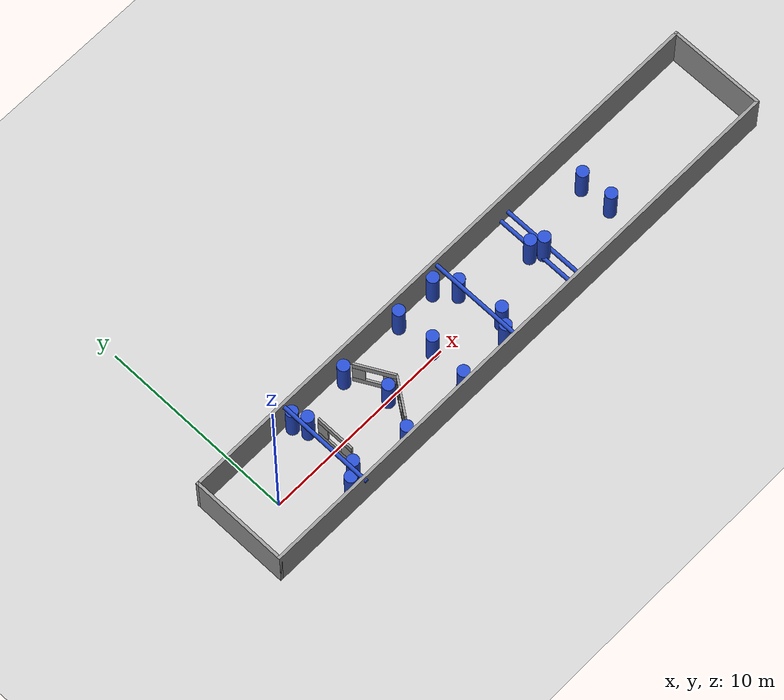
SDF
<sdf version="1.7">
 <world name="default">
  <model name="ground_plane">
   <static>1</static>
   <link name="link">
    <collision name="collision">
     <geometry><plane><normal>0 0 1</normal><size>100 100</size></plane></geometry>
     <surface><friction><ode><mu>100</mu><mu2>50</mu2></ode></friction></surface>
    </collision>
    <visual name="visual">
     <cast_shadows>0</cast_shadows>
     <geometry><plane><normal>0 0 1</normal><size>100 100</size></plane></geometry>
     <material>
      <script><uri>file://media/materials/scripts/gazebo.material</uri><name>Gazebo/Grey</name></script>
     </material>
    </visual>
   </link>
  </model>
  <light name="sun" type="directional">
   <pose>0 0 1000 0 -0 0</pose>
   <diffuse>0.8 0.8 0.8 1</diffuse>
   <specular>0.2 0.2 0.2 1</specular>
   <attenuation>
    <range>1000</range>
    <constant>0.9</constant>
    <linear>0.01</linear>
    <quadratic>0.001</quadratic>
   </attenuation>
   <direction>-0.5 0.1 -0.9</direction>
   <spot><inner_angle>0</inner_angle><outer_angle>0</outer_angle><falloff>0</falloff></spot>
  </light>
  <gravity>0 0 -9.8</gravity>
  <magnetic_field>6e-06 2.3e-05 -4.2e-05</magnetic_field>
  <atmosphere type="adiabatic"/>
  <plugin name="ros_interface_plugin" filename="librotors_gazebo_ros_interface_plugin.so"/>
  <physics name="default_physics" default="0" type="ode">
   <ode>
    <solver>
     <type>quick</type>
     <iters>1000</iters>
     <sor>1.3</sor>
     <use_dynamic_moi_rescaling>0</use_dynamic_moi_rescaling>
    </solver>
    <constraints>
     <cfm>0</cfm>
     <erp>0.2</erp>
     <contact_max_correcting_vel>100</contact_max_correcting_vel>
     <contact_surface_layer>0.001</contact_surface_layer>
    </constraints>
   </ode>
   <max_step_size>0.01</max_step_size>
   <real_time_factor>1</real_time_factor>
   <real_time_update_rate>100</real_time_update_rate>
  </physics>
  <scene><ambient>0.4 0.4 0.4 1</ambient><background>0.7 0.7 0.7 1</background><shadows>1</shadows></scene>
  <spherical_coordinates>
   <surface_model>EARTH_WGS84</surface_model>
   <latitude_deg>0</latitude_deg>
   <longitude_deg>0</longitude_deg>
   <elevation>0</elevation>
   <heading_deg>0</heading_deg>
  </spherical_coordinates>
  <model name="30x5_hall">
   <pose>12.5766 0 0 0 -0 0</pose>
   <link name="Wall_12">
    <collision name="Wall_12_Collision">
     <geometry><box><size>30 0.15 2.5</size></box></geometry>
     <pose>0 0 1.25 0 -0 0</pose>
    </collision>
    <visual name="Wall_12_Visual">
     <pose>0 0 1.25 0 -0 0</pose>
     <geometry><box><size>30 0.15 2.5</size></box></geometry>
     <material>
      <script><uri>file://media/materials/scripts/gazebo.material</uri><name>Gazebo/Grey</name></script>
      <ambient>1 1 1 1</ambient>
     </material>
     <meta><layer>0</layer></meta>
    </visual>
    <pose>0 -2.425 0 0 -0 0</pose>
   </link>
   <link name="Wall_13">
    <collision name="Wall_13_Collision">
     <geometry><box><size>5 0.15 2.5</size></box></geometry>
     <pose>0 0 1.25 0 -0 0</pose>
    </collision>
    <visual name="Wall_13_Visual">
     <pose>0 0 1.25 0 -0 0</pose>
     <geometry><box><size>5 0.15 2.5</size></box></geometry>
     <material>
      <script><uri>file://media/materials/scripts/gazebo.material</uri><name>Gazebo/Grey</name></script>
      <ambient>1 1 1 1</ambient>
     </material>
     <meta><layer>0</layer></meta>
    </visual>
    <pose>14.925 0 0 0 -0 1.5708</pose>
   </link>
   <link name="Wall_14">
    <collision name="Wall_14_Collision">
     <geometry><box><size>30 0.15 2.5</size></box></geometry>
     <pose>0 0 1.25 0 -0 0</pose>
    </collision>
    <visual name="Wall_14_Visual">
     <pose>0 0 1.25 0 -0 0</pose>
     <geometry><box><size>30 0.15 2.5</size></box></geometry>
     <material>
      <script><uri>file://media/materials/scripts/gazebo.material</uri><name>Gazebo/Grey</name></script>
      <ambient>1 1 1 1</ambient>
     </material>
     <meta><layer>0</layer></meta>
    </visual>
    <pose>0 2.425 0 0 -0 3.14159</pose>
   </link>
   <link name="Wall_15">
    <collision name="Wall_15_Collision">
     <geometry><box><size>5 0.15 2.5</size></box></geometry>
     <pose>0 0 1.25 0 -0 0</pose>
    </collision>
    <visual name="Wall_15_Visual">
     <pose>0 0 1.25 0 -0 0</pose>
     <geometry><box><size>5 0.15 2.5</size></box></geometry>
     <material>
      <script><uri>file://media/materials/scripts/gazebo.material</uri><name>Gazebo/Grey</name></script>
      <ambient>1 1 1 1</ambient>
     </material>
     <meta><layer>0</layer></meta>
    </visual>
    <pose>-14.925 0 0 0 0 -1.5708</pose>
   </link>
   <static>1</static>
  </model>
  <model name="cylinder_obstacle19">
   <static>1</static>
   <link name="link">
    <pose>0 0 1 0 -0 0</pose>
    <inertial>
     <mass>100</mass>
     <inertia>
      <ixx>0.166667</ixx>
      <ixy>0</ixy>
      <ixz>0</ixz>
      <iyy>0.166667</iyy>
      <iyz>0</iyz>
      <izz>0.166667</izz>
     </inertia>
    </inertial>
    <collision name="collision">
     <geometry><cylinder><radius>0.3</radius><length>2</length></cylinder></geometry>
    </collision>
    <visual name="visual">
     <geometry><cylinder><radius>0.3</radius><length>2</length></cylinder></geometry>
     <material>
      <script><name>Gazebo/Blue</name><uri>file://media/materials/scripts/gazebo.material</uri></script>
     </material>
    </visual>
   </link>
   <pose>12.2261 -1.72253 -0.000904 4.8e-05 3.8e-05 -0.000759</pose>
  </model>
  <model name="cylinder_obstacle27">
   <static>1</static>
   <link name="link">
    <pose>0 0 1 0 -0 0</pose>
    <inertial>
     <mass>100</mass>
     <inertia>
      <ixx>0.166667</ixx>
      <ixy>0</ixy>
      <ixz>0</ixz>
      <iyy>0.166667</iyy>
      <iyz>0</iyz>
      <izz>0.166667</izz>
     </inertia>
    </inertial>
    <collision name="collision">
     <geometry><cylinder><radius>0.3</radius><length>2</length></cylinder></geometry>
    </collision>
    <visual name="visual">
     <geometry><cylinder><radius>0.3</radius><length>2</length></cylinder></geometry>
     <material>
      <script><name>Gazebo/Blue</name><uri>file://media/materials/scripts/gazebo.material</uri></script>
     </material>
    </visual>
   </link>
   <pose>19.8695 0.903724 -0.000892 4.8e-05 3.8e-05 -0.000759</pose>
  </model>
  <model name="easy_window">
   <frame name="easy_window::__model__" attached_to="easy_window::Center">
    <pose relative_to="__model__">0 0 0 0 -0 0</pose>
   </frame>
   <static>1</static>
   <link name="easy_window::Center"><pose relative_to="easy_window::__model__">0 0 0 0 -0 0</pose></link>
   <link name="easy_window::left_side">
    <collision name="left_side_Collision">
     <pose>0 0.7 0.5 0 -0 0</pose>
     <geometry><box><size>0.1 0.6 1</size></box></geometry>
    </collision>
    <visual name="left_side_Visual">
     <pose>0 0.7 0.5 0 -0 0</pose>
     <geometry><box><size>0.1 0.6 1</size></box></geometry>
     <material>
      <script><uri>file://media/materials/scripts/gazebo.material</uri><name>Gazebo/Grey</name></script>
      <ambient>1 1 1 1</ambient>
     </material>
     <meta><layer>0</layer></meta>
    </visual>
    <pose relative_to="easy_window::__model__">0 0 0 0 -0 0</pose>
   </link>
   <link name="easy_window::right_side">
    <collision name="right_side_Collision">
     <pose>0 -0.7 0.5 0 -0 0</pose>
     <geometry><box><size>0.1 0.6 1</size></box></geometry>
    </collision>
    <visual name="left_side_Visual">
     <pose>0 -0.7 0.5 0 -0 0</pose>
     <geometry><box><size>0.1 0.6 1</size></box></geometry>
     <material>
      <script><uri>file://media/materials/scripts/gazebo.material</uri><name>Gazebo/Grey</name></script>
      <ambient>1 1 1 1</ambient>
     </material>
     <meta><layer>0</layer></meta>
    </visual>
    <pose relative_to="easy_window::__model__">0 0 0 0 -0 0</pose>
   </link>
   <link name="easy_window::overhead">
    <collision name="overhead_Collision">
     <pose>0 0 1.2 0 -0 0</pose>
     <geometry><box><size>0.1 2 0.4</size></box></geometry>
    </collision>
    <visual name="overhead_Visual">
     <pose>0 0 1.2 0 -0 0</pose>
     <geometry><box><size>0.1 2 0.4</size></box></geometry>
     <material>
      <script><uri>file://media/materials/scripts/gazebo.material</uri><name>Gazebo/Grey</name></script>
      <ambient>1 1 1 1</ambient>
     </material>
     <meta><layer>0</layer></meta>
    </visual>
    <pose relative_to="easy_window::__model__">0 0 0 0 -0 0</pose>
   </link>
   <link name="easy_window::lower_side">
    <collision name="lower_side_Collision">
     <pose>0 0 -0.2 0 -0 0</pose>
     <geometry><box><size>0.1 2 0.4</size></box></geometry>
    </collision>
    <visual name="lower_side_Visual">
     <pose>0 0 -0.2 0 -0 0</pose>
     <geometry><box><size>0.1 2 0.4</size></box></geometry>
     <material>
      <script><uri>file://media/materials/scripts/gazebo.material</uri><name>Gazebo/Grey</name></script>
      <ambient>1 1 1 1</ambient>
     </material>
     <meta><layer>0</layer></meta>
    </visual>
    <pose relative_to="easy_window::__model__">0 0 0 0 -0 0</pose>
   </link>
   <pose>3.43181 -0.042129 0.770167 0 -0 0</pose>
  </model>
  <model name="cylinder_obstacle19_clone">
   <static>1</static>
   <link name="link">
    <pose>0 0 1 0 -0 0</pose>
    <inertial>
     <mass>100</mass>
     <inertia>
      <ixx>0.166667</ixx>
      <ixy>0</ixy>
      <ixz>0</ixz>
      <iyy>0.166667</iyy>
      <iyz>0</iyz>
      <izz>0.166667</izz>
     </inertia>
    </inertial>
    <collision name="collision">
     <geometry><cylinder><radius>0.3</radius><length>2</length></cylinder></geometry>
    </collision>
    <visual name="visual">
     <geometry><cylinder><radius>0.3</radius><length>2</length></cylinder></geometry>
     <material>
      <script><name>Gazebo/Blue</name><uri>file://media/materials/scripts/gazebo.material</uri></script>
     </material>
    </visual>
   </link>
   <pose>3.11272 -1.41588 -0.000877 4.8e-05 3.8e-05 -0.000759</pose>
  </model>
  <model name="cylinder_obstacle19_clone_0">
   <static>1</static>
   <link name="link">
    <pose>0 0 1 0 -0 0</pose>
    <inertial>
     <mass>100</mass>
     <inertia>
      <ixx>0.166667</ixx>
      <ixy>0</ixy>
      <ixz>0</ixz>
      <iyy>0.166667</iyy>
      <iyz>0</iyz>
      <izz>0.166667</izz>
     </inertia>
    </inertial>
    <collision name="collision">
     <geometry><cylinder><radius>0.3</radius><length>2</length></cylinder></geometry>
    </collision>
    <visual name="visual">
     <geometry><cylinder><radius>0.3</radius><length>2</length></cylinder></geometry>
     <material>
      <script><name>Gazebo/Blue</name><uri>file://media/materials/scripts/gazebo.material</uri></script>
     </material>
    </visual>
   </link>
   <pose>2.51677 -1.86661 -0.000877 4.8e-05 3.8e-05 -0.000759</pose>
  </model>
  <model name="cylinder_obstacle19_clone_1">
   <static>1</static>
   <link name="link">
    <pose>0 0 1 0 -0 0</pose>
    <inertial>
     <mass>100</mass>
     <inertia>
      <ixx>0.166667</ixx>
      <ixy>0</ixy>
      <ixz>0</ixz>
      <iyy>0.166667</iyy>
      <iyz>0</iyz>
      <izz>0.166667</izz>
     </inertia>
    </inertial>
    <collision name="collision">
     <geometry><cylinder><radius>0.3</radius><length>2</length></cylinder></geometry>
    </collision>
    <visual name="visual">
     <geometry><cylinder><radius>0.3</radius><length>2</length></cylinder></geometry>
     <material>
      <script><name>Gazebo/Blue</name><uri>file://media/materials/scripts/gazebo.material</uri></script>
     </material>
    </visual>
   </link>
   <pose>3.21715 1.40357 -0.000877 4.8e-05 3.8e-05 -0.000759</pose>
  </model>
  <model name="cylinder_obstacle19_clone_2">
   <static>1</static>
   <link name="link">
    <pose>0 0 1 0 -0 0</pose>
    <inertial>
     <mass>100</mass>
     <inertia>
      <ixx>0.166667</ixx>
      <ixy>0</ixy>
      <ixz>0</ixz>
      <iyy>0.166667</iyy>
      <iyz>0</iyz>
      <izz>0.166667</izz>
     </inertia>
    </inertial>
    <collision name="collision">
     <geometry><cylinder><radius>0.3</radius><length>2</length></cylinder></geometry>
    </collision>
    <visual name="visual">
     <geometry><cylinder><radius>0.3</radius><length>2</length></cylinder></geometry>
     <material>
      <script><name>Gazebo/Blue</name><uri>file://media/materials/scripts/gazebo.material</uri></script>
     </material>
    </visual>
   </link>
   <pose>2.91738 2.06046 -0.000877 4.8e-05 3.8e-05 -0.000759</pose>
  </model>
  <model name="easy_window_clone">
   <frame name="easy_window::__model__" attached_to="easy_window::Center">
    <pose relative_to="__model__">0 0 0 0 -0 0</pose>
   </frame>
   <static>1</static>
   <link name="easy_window::Center"><pose relative_to="easy_window::__model__">0 0 0 0 -0 0</pose></link>
   <link name="easy_window::left_side">
    <collision name="left_side_Collision">
     <pose>0 0.7 0.5 0 -0 0</pose>
     <geometry><box><size>0.1 0.6 1</size></box></geometry>
    </collision>
    <visual name="left_side_Visual">
     <pose>0 0.7 0.5 0 -0 0</pose>
     <geometry><box><size>0.1 0.6 1</size></box></geometry>
     <material>
      <script><uri>file://media/materials/scripts/gazebo.material</uri><name>Gazebo/Grey</name></script>
      <ambient>1 1 1 1</ambient>
     </material>
     <meta><layer>0</layer></meta>
    </visual>
    <pose relative_to="easy_window::__model__">0 0 0 0 -0 0</pose>
   </link>
   <link name="easy_window::right_side">
    <collision name="right_side_Collision">
     <pose>0 -0.7 0.5 0 -0 0</pose>
     <geometry><box><size>0.1 0.6 1</size></box></geometry>
    </collision>
    <visual name="left_side_Visual">
     <pose>0 -0.7 0.5 0 -0 0</pose>
     <geometry><box><size>0.1 0.6 1</size></box></geometry>
     <material>
      <script><uri>file://media/materials/scripts/gazebo.material</uri><name>Gazebo/Grey</name></script>
      <ambient>1 1 1 1</ambient>
     </material>
     <meta><layer>0</layer></meta>
    </visual>
    <pose relative_to="easy_window::__model__">0 0 0 0 -0 0</pose>
   </link>
   <link name="easy_window::overhead">
    <collision name="overhead_Collision">
     <pose>0 0 1.2 0 -0 0</pose>
     <geometry><box><size>0.1 2 0.4</size></box></geometry>
    </collision>
    <visual name="overhead_Visual">
     <pose>0 0 1.2 0 -0 0</pose>
     <geometry><box><size>0.1 2 0.4</size></box></geometry>
     <material>
      <script><uri>file://media/materials/scripts/gazebo.material</uri><name>Gazebo/Grey</name></script>
      <ambient>1 1 1 1</ambient>
     </material>
     <meta><layer>0</layer></meta>
    </visual>
    <pose relative_to="easy_window::__model__">0 0 0 0 -0 0</pose>
   </link>
   <link name="easy_window::lower_side">
    <collision name="lower_side_Collision">
     <pose>0 0 -0.2 0 -0 0</pose>
     <geometry><box><size>0.1 2 0.4</size></box></geometry>
    </collision>
    <visual name="lower_side_Visual">
     <pose>0 0 -0.2 0 -0 0</pose>
     <geometry><box><size>0.1 2 0.4</size></box></geometry>
     <material>
      <script><uri>file://media/materials/scripts/gazebo.material</uri><name>Gazebo/Grey</name></script>
      <ambient>1 1 1 1</ambient>
     </material>
     <meta><layer>0</layer></meta>
    </visual>
    <pose relative_to="easy_window::__model__">0 0 0 0 -0 0</pose>
   </link>
   <pose>6.73928 0.831037 0.770167 0 -0 0.495515</pose>
  </model>
  <model name="easy_window_clone_0">
   <frame name="easy_window::__model__" attached_to="easy_window::Center">
    <pose relative_to="__model__">0 0 0 0 -0 0</pose>
   </frame>
   <static>1</static>
   <link name="easy_window::Center"><pose relative_to="easy_window::__model__">0 0 0 0 -0 0</pose></link>
   <link name="easy_window::left_side">
    <collision name="left_side_Collision">
     <pose>0 0.7 0.5 0 -0 0</pose>
     <geometry><box><size>0.1 0.6 1</size></box></geometry>
    </collision>
    <visual name="left_side_Visual">
     <pose>0 0.7 0.5 0 -0 0</pose>
     <geometry><box><size>0.1 0.6 1</size></box></geometry>
     <material>
      <script><uri>file://media/materials/scripts/gazebo.material</uri><name>Gazebo/Grey</name></script>
      <ambient>1 1 1 1</ambient>
     </material>
     <meta><layer>0</layer></meta>
    </visual>
    <pose relative_to="easy_window::__model__">0 0 0 0 -0 0</pose>
   </link>
   <link name="easy_window::right_side">
    <collision name="right_side_Collision">
     <pose>0 -0.7 0.5 0 -0 0</pose>
     <geometry><box><size>0.1 0.6 1</size></box></geometry>
    </collision>
    <visual name="left_side_Visual">
     <pose>0 -0.7 0.5 0 -0 0</pose>
     <geometry><box><size>0.1 0.6 1</size></box></geometry>
     <material>
      <script><uri>file://media/materials/scripts/gazebo.material</uri><name>Gazebo/Grey</name></script>
      <ambient>1 1 1 1</ambient>
     </material>
     <meta><layer>0</layer></meta>
    </visual>
    <pose relative_to="easy_window::__model__">0 0 0 0 -0 0</pose>
   </link>
   <link name="easy_window::overhead">
    <collision name="overhead_Collision">
     <pose>0 0 1.2 0 -0 0</pose>
     <geometry><box><size>0.1 2 0.4</size></box></geometry>
    </collision>
    <visual name="overhead_Visual">
     <pose>0 0 1.2 0 -0 0</pose>
     <geometry><box><size>0.1 2 0.4</size></box></geometry>
     <material>
      <script><uri>file://media/materials/scripts/gazebo.material</uri><name>Gazebo/Grey</name></script>
      <ambient>1 1 1 1</ambient>
     </material>
     <meta><layer>0</layer></meta>
    </visual>
    <pose relative_to="easy_window::__model__">0 0 0 0 -0 0</pose>
   </link>
   <link name="easy_window::lower_side">
    <collision name="lower_side_Collision">
     <pose>0 0 -0.2 0 -0 0</pose>
     <geometry><box><size>0.1 2 0.4</size></box></geometry>
    </collision>
    <visual name="lower_side_Visual">
     <pose>0 0 -0.2 0 -0 0</pose>
     <geometry><box><size>0.1 2 0.4</size></box></geometry>
     <material>
      <script><uri>file://media/materials/scripts/gazebo.material</uri><name>Gazebo/Grey</name></script>
      <ambient>1 1 1 1</ambient>
     </material>
     <meta><layer>0</layer></meta>
    </visual>
    <pose relative_to="easy_window::__model__">0 0 0 0 -0 0</pose>
   </link>
   <pose>6.64093 -0.859456 0.770167 0 0 -0.618005</pose>
  </model>
  <model name="cylinder_obstacle27_clone">
   <static>1</static>
   <link name="link">
    <pose>0 0 1 0 -0 0</pose>
    <inertial>
     <mass>100</mass>
     <inertia>
      <ixx>0.166667</ixx>
      <ixy>0</ixy>
      <ixz>0</ixz>
      <iyy>0.166667</iyy>
      <iyz>0</iyz>
      <izz>0.166667</izz>
     </inertia>
    </inertial>
    <collision name="collision">
     <geometry><cylinder><radius>0.3</radius><length>2</length></cylinder></geometry>
    </collision>
    <visual name="visual">
     <geometry><cylinder><radius>0.3</radius><length>2</length></cylinder></geometry>
     <material>
      <script><name>Gazebo/Blue</name><uri>file://media/materials/scripts/gazebo.material</uri></script>
     </material>
    </visual>
   </link>
   <pose>9.38907 -1.93425 0.01295 4.8e-05 3.8e-05 -0.000759</pose>
  </model>
  <model name="cylinder_obstacle27_clone_0">
   <static>1</static>
   <link name="link">
    <pose>0 0 1 0 -0 0</pose>
    <inertial>
     <mass>100</mass>
     <inertia>
      <ixx>0.166667</ixx>
      <ixy>0</ixy>
      <ixz>0</ixz>
      <iyy>0.166667</iyy>
      <iyz>0</iyz>
      <izz>0.166667</izz>
     </inertia>
    </inertial>
    <collision name="collision">
     <geometry><cylinder><radius>0.3</radius><length>2</length></cylinder></geometry>
    </collision>
    <visual name="visual">
     <geometry><cylinder><radius>0.3</radius><length>2</length></cylinder></geometry>
     <material>
      <script><name>Gazebo/Blue</name><uri>file://media/materials/scripts/gazebo.material</uri></script>
     </material>
    </visual>
   </link>
   <pose>9.6451 0.169663 -0.000877 4.8e-05 3.8e-05 -0.000759</pose>
  </model>
  <model name="cylinder_obstacle27_clone_1">
   <static>1</static>
   <link name="link">
    <pose>0 0 1 0 -0 0</pose>
    <inertial>
     <mass>100</mass>
     <inertia>
      <ixx>0.166667</ixx>
      <ixy>0</ixy>
      <ixz>0</ixz>
      <iyy>0.166667</iyy>
      <iyz>0</iyz>
      <izz>0.166667</izz>
     </inertia>
    </inertial>
    <collision name="collision">
     <geometry><cylinder><radius>0.3</radius><length>2</length></cylinder></geometry>
    </collision>
    <visual name="visual">
     <geometry><cylinder><radius>0.3</radius><length>2</length></cylinder></geometry>
     <material>
      <script><name>Gazebo/Blue</name><uri>file://media/materials/scripts/gazebo.material</uri></script>
     </material>
    </visual>
   </link>
   <pose>9.50335 2.06062 -0.00081 4.8e-05 3.8e-05 -0.000759</pose>
  </model>
  <model name="cylinder_obstacle27_clone_2">
   <static>1</static>
   <link name="link">
    <pose>0 0 1 0 -0 0</pose>
    <inertial>
     <mass>100</mass>
     <inertia>
      <ixx>0.166667</ixx>
      <ixy>0</ixy>
      <ixz>0</ixz>
      <iyy>0.166667</iyy>
      <iyz>0</iyz>
      <izz>0.166667</izz>
     </inertia>
    </inertial>
    <collision name="collision">
     <geometry><cylinder><radius>0.3</radius><length>2</length></cylinder></geometry>
    </collision>
    <visual name="visual">
     <geometry><cylinder><radius>0.3</radius><length>2</length></cylinder></geometry>
     <material>
      <script><name>Gazebo/Blue</name><uri>file://media/materials/scripts/gazebo.material</uri></script>
     </material>
    </visual>
   </link>
   <pose>5.98576 1.9659 -0.000877 4.8e-05 3.8e-05 -0.000759</pose>
  </model>
  <model name="cylinder_obstacle27_clone_3">
   <static>1</static>
   <link name="link">
    <pose>0 0 1 0 -0 0</pose>
    <inertial>
     <mass>100</mass>
     <inertia>
      <ixx>0.166667</ixx>
      <ixy>0</ixy>
      <ixz>0</ixz>
      <iyy>0.166667</iyy>
      <iyz>0</iyz>
      <izz>0.166667</izz>
     </inertia>
    </inertial>
    <collision name="collision">
     <geometry><cylinder><radius>0.3</radius><length>2</length></cylinder></geometry>
    </collision>
    <visual name="visual">
     <geometry><cylinder><radius>0.3</radius><length>2</length></cylinder></geometry>
     <material>
      <script><name>Gazebo/Blue</name><uri>file://media/materials/scripts/gazebo.material</uri></script>
     </material>
    </visual>
   </link>
   <pose>5.85122 -1.9568 -0.000877 4.8e-05 3.8e-05 -0.000759</pose>
  </model>
  <model name="cylinder-0_1x5_0_clone_clone_0">
   <pose>2.77318 -0.077831 2.20103 -1.57 0 0</pose>
   <static>1</static>
   <link name="link">
    <inertial>
     <mass>1</mass>
     <inertia><ixx>0.145833</ixx><ixy>0</ixy><ixz>0</ixz><iyy>0.145833</iyy><iyz>0</iyz><izz>0.125</izz></inertia>
    </inertial>
    <collision name="collision">
     <geometry><cylinder><radius>0.1</radius><length>5</length></cylinder></geometry>
    </collision>
    <visual name="visual">
     <geometry><cylinder><radius>0.1</radius><length>5</length></cylinder></geometry>
     <material>
      <script><name>Gazebo/Blue</name><uri>file://media/materials/scripts/gazebo.material</uri></script>
     </material>
    </visual>
   </link>
  </model>
  <model name="cylinder_obstacle27_clone_4">
   <static>1</static>
   <link name="link">
    <pose>0 0 1 0 -0 0</pose>
    <inertial>
     <mass>100</mass>
     <inertia>
      <ixx>0.166667</ixx>
      <ixy>0</ixy>
      <ixz>0</ixz>
      <iyy>0.166667</iyy>
      <iyz>0</iyz>
      <izz>0.166667</izz>
     </inertia>
    </inertial>
    <collision name="collision">
     <geometry><cylinder><radius>0.3</radius><length>2</length></cylinder></geometry>
    </collision>
    <visual name="visual">
     <geometry><cylinder><radius>0.3</radius><length>2</length></cylinder></geometry>
     <material>
      <script><name>Gazebo/Blue</name><uri>file://media/materials/scripts/gazebo.material</uri></script>
     </material>
    </visual>
   </link>
   <pose>6.68983 -0.044279 -0.000877 4.8e-05 3.8e-05 -0.000759</pose>
  </model>
  <model name="cylinder-0_1x5_0_clone_clone_clone">
   <pose>12.1517 0.035924 2.07009 -1.57 0 0</pose>
   <static>1</static>
   <link name="link">
    <inertial>
     <mass>1</mass>
     <inertia><ixx>0.145833</ixx><ixy>0</ixy><ixz>0</ixz><iyy>0.145833</iyy><iyz>0</iyz><izz>0.125</izz></inertia>
    </inertial>
    <collision name="collision">
     <geometry><cylinder><radius>0.1</radius><length>5</length></cylinder></geometry>
    </collision>
    <visual name="visual">
     <geometry><cylinder><radius>0.1</radius><length>5</length></cylinder></geometry>
     <material>
      <script><name>Gazebo/Blue</name><uri>file://media/materials/scripts/gazebo.material</uri></script>
     </material>
    </visual>
   </link>
  </model>
  <model name="cylinder_obstacle19_clone_3">
   <static>1</static>
   <link name="link">
    <pose>0 0 1 0 -0 0</pose>
    <inertial>
     <mass>100</mass>
     <inertia>
      <ixx>0.166667</ixx>
      <ixy>0</ixy>
      <ixz>0</ixz>
      <iyy>0.166667</iyy>
      <iyz>0</iyz>
      <izz>0.166667</izz>
     </inertia>
    </inertial>
    <collision name="collision">
     <geometry><cylinder><radius>0.3</radius><length>2</length></cylinder></geometry>
    </collision>
    <visual name="visual">
     <geometry><cylinder><radius>0.3</radius><length>2</length></cylinder></geometry>
     <material>
      <script><name>Gazebo/Blue</name><uri>file://media/materials/scripts/gazebo.material</uri></script>
     </material>
    </visual>
   </link>
   <pose>11.6522 2.08815 -0.000839 4.8e-05 3.8e-05 -0.000759</pose>
  </model>
  <model name="cylinder_obstacle19_clone_4">
   <static>1</static>
   <link name="link">
    <pose>0 0 1 0 -0 0</pose>
    <inertial>
     <mass>100</mass>
     <inertia>
      <ixx>0.166667</ixx>
      <ixy>0</ixy>
      <ixz>0</ixz>
      <iyy>0.166667</iyy>
      <iyz>0</iyz>
      <izz>0.166667</izz>
     </inertia>
    </inertial>
    <collision name="collision">
     <geometry><cylinder><radius>0.3</radius><length>2</length></cylinder></geometry>
    </collision>
    <visual name="visual">
     <geometry><cylinder><radius>0.3</radius><length>2</length></cylinder></geometry>
     <material>
      <script><name>Gazebo/Blue</name><uri>file://media/materials/scripts/gazebo.material</uri></script>
     </material>
    </visual>
   </link>
   <pose>12.7295 -1.02531 0.00588 4.8e-05 3.8e-05 -0.000759</pose>
  </model>
  <model name="cylinder-0_1x5_0_clone_clone_clone_clone">
   <pose>16.2461 0.090997 0.268391 -1.57 0 0</pose>
   <static>1</static>
   <link name="link">
    <inertial>
     <mass>1</mass>
     <inertia><ixx>0.145833</ixx><ixy>0</ixy><ixz>0</ixz><iyy>0.145833</iyy><iyz>0</iyz><izz>0.125</izz></inertia>
    </inertial>
    <collision name="collision">
     <geometry><cylinder><radius>0.1</radius><length>5</length></cylinder></geometry>
    </collision>
    <visual name="visual">
     <geometry><cylinder><radius>0.1</radius><length>5</length></cylinder></geometry>
     <material>
      <script><name>Gazebo/Blue</name><uri>file://media/materials/scripts/gazebo.material</uri></script>
     </material>
    </visual>
   </link>
  </model>
  <model name="cylinder-0_1x5_0_clone_clone_clone_clone_clone">
   <pose>16.6666 0.288022 0.604418 -1.57 0 0</pose>
   <static>1</static>
   <link name="link">
    <inertial>
     <mass>1</mass>
     <inertia><ixx>0.145833</ixx><ixy>0</ixy><ixz>0</ixz><iyy>0.145833</iyy><iyz>0</iyz><izz>0.125</izz></inertia>
    </inertial>
    <collision name="collision">
     <geometry><cylinder><radius>0.1</radius><length>5</length></cylinder></geometry>
    </collision>
    <visual name="visual">
     <geometry><cylinder><radius>0.1</radius><length>5</length></cylinder></geometry>
     <material>
      <script><name>Gazebo/Blue</name><uri>file://media/materials/scripts/gazebo.material</uri></script>
     </material>
    </visual>
   </link>
  </model>
  <model name="cylinder_obstacle27_clone_5">
   <static>1</static>
   <link name="link">
    <pose>0 0 1 0 -0 0</pose>
    <inertial>
     <mass>100</mass>
     <inertia>
      <ixx>0.166667</ixx>
      <ixy>0</ixy>
      <ixz>0</ixz>
      <iyy>0.166667</iyy>
      <iyz>0</iyz>
      <izz>0.166667</izz>
     </inertia>
    </inertial>
    <collision name="collision">
     <geometry><cylinder><radius>0.3</radius><length>2</length></cylinder></geometry>
    </collision>
    <visual name="visual">
     <geometry><cylinder><radius>0.3</radius><length>2</length></cylinder></geometry>
     <material>
      <script><name>Gazebo/Blue</name><uri>file://media/materials/scripts/gazebo.material</uri></script>
     </material>
    </visual>
   </link>
   <pose>16.4218 -0.060987 -0.0009 4.8e-05 3.8e-05 -0.000759</pose>
  </model>
  <model name="cylinder_obstacle27_clone_6">
   <static>1</static>
   <link name="link">
    <pose>0 0 1 0 -0 0</pose>
    <inertial>
     <mass>100</mass>
     <inertia>
      <ixx>0.166667</ixx>
      <ixy>0</ixy>
      <ixz>0</ixz>
      <iyy>0.166667</iyy>
      <iyz>0</iyz>
      <izz>0.166667</izz>
     </inertia>
    </inertial>
    <collision name="collision">
     <geometry><cylinder><radius>0.3</radius><length>2</length></cylinder></geometry>
    </collision>
    <visual name="visual">
     <geometry><cylinder><radius>0.3</radius><length>2</length></cylinder></geometry>
     <material>
      <script><name>Gazebo/Blue</name><uri>file://media/materials/scripts/gazebo.material</uri></script>
     </material>
    </visual>
   </link>
   <pose>15.8876 0.279304 -0.000891 4.8e-05 3.8e-05 -0.000759</pose>
  </model>
  <model name="cylinder_obstacle27_clone_6_clone">
   <static>1</static>
   <link name="link">
    <pose>0 0 1 0 -0 0</pose>
    <inertial>
     <mass>100</mass>
     <inertia>
      <ixx>0.166667</ixx>
      <ixy>0</ixy>
      <ixz>0</ixz>
      <iyy>0.166667</iyy>
      <iyz>0</iyz>
      <izz>0.166667</izz>
     </inertia>
    </inertial>
    <collision name="collision">
     <geometry><cylinder><radius>0.3</radius><length>2</length></cylinder></geometry>
    </collision>
    <visual name="visual">
     <geometry><cylinder><radius>0.3</radius><length>2</length></cylinder></geometry>
     <material>
      <script><name>Gazebo/Blue</name><uri>file://media/materials/scripts/gazebo.material</uri></script>
     </material>
    </visual>
   </link>
   <pose>12.3812 1.22569 -0.000915 4.8e-05 3.8e-05 -0.000759</pose>
  </model>
  <model name="cylinder_obstacle27_clone_7">
   <static>1</static>
   <link name="link">
    <pose>0 0 1 0 -0 0</pose>
    <inertial>
     <mass>100</mass>
     <inertia>
      <ixx>0.166667</ixx>
      <ixy>0</ixy>
      <ixz>0</ixz>
      <iyy>0.166667</iyy>
      <iyz>0</iyz>
      <izz>0.166667</izz>
     </inertia>
    </inertial>
    <collision name="collision">
     <geometry><cylinder><radius>0.3</radius><length>2</length></cylinder></geometry>
    </collision>
    <visual name="visual">
     <geometry><cylinder><radius>0.3</radius><length>2</length></cylinder></geometry>
     <material>
      <script><name>Gazebo/Blue</name><uri>file://media/materials/scripts/gazebo.material</uri></script>
     </material>
    </visual>
   </link>
   <pose>19.9786 -0.715798 -0.000884 4.8e-05 3.8e-05 -0.000759</pose>
  </model>
 </world>
</sdf>
